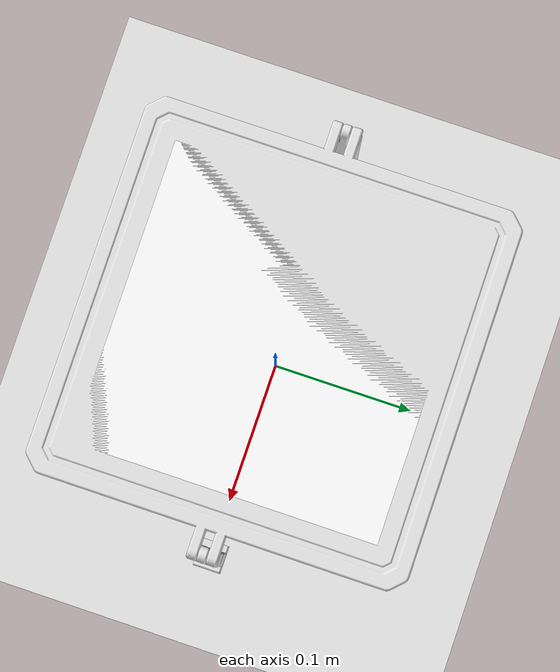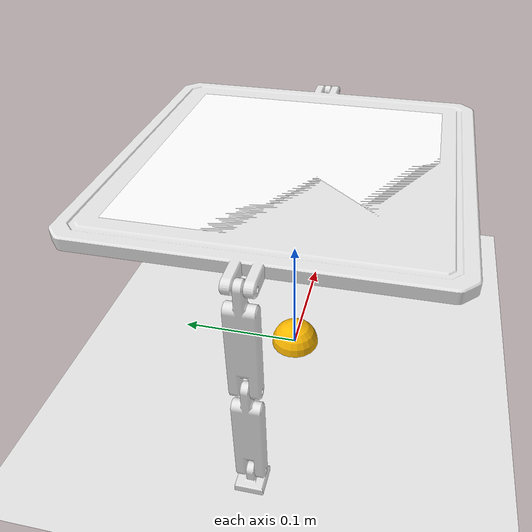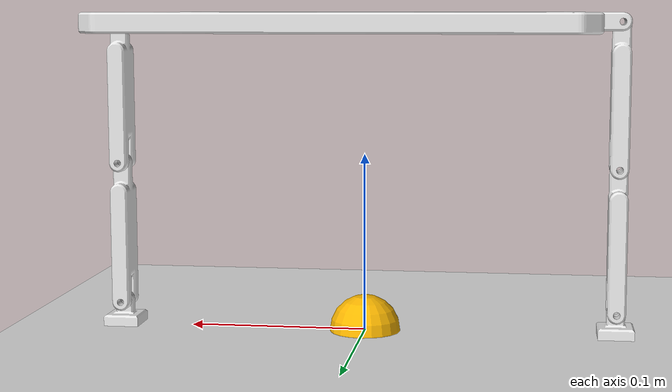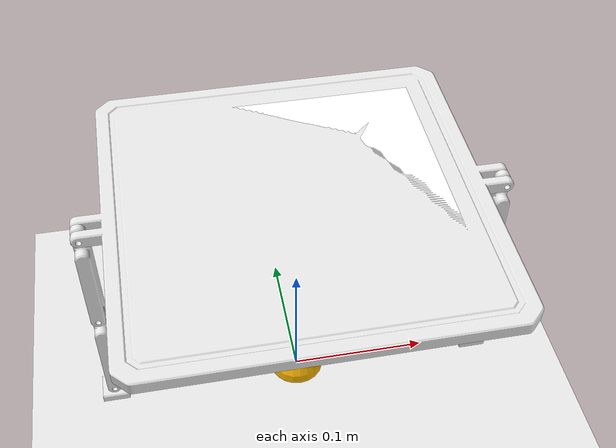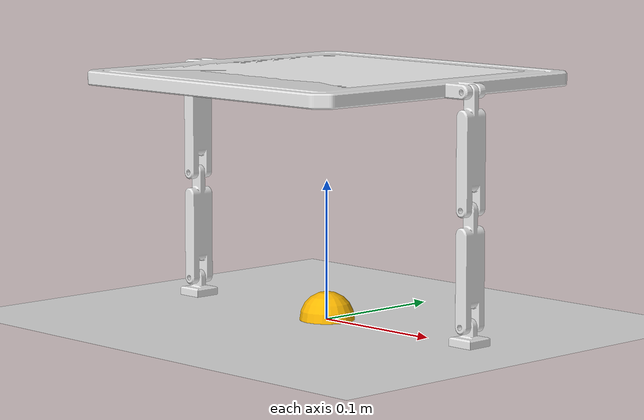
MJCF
<mujoco model="juggling_platform_2d">
  <option cone="elliptic" timestep="3e-3" integrator="implicitfast"/>
  <compiler angle="radian" coordinate="local" meshdir="/home/admin/workspace/src/descriptions/balancing_platform_2d_description/meshes"/>
  <option gravity="0 0 -9.81"/>

  <default>
    <joint damping="0.0"/>
    <pair solref="0.05 0.03" solimp="0.001 0.005 4 0.5 0.001"/>
    <geom type="mesh" contype="1" conaffinity="1" rgba="0.9 0.9 0.9 1"/>
  </default>

  <statistic center="0.0 0 0.2" extent="1.0"/>

  <visual>
    <headlight diffuse="0.6 0.6 0.6" ambient="0.3 0.3 0.3" specular="0 0 0"/>
    <rgba haze="0.15 0.25 0.35 1"/>
    <global azimuth="90" elevation="-20"/>
  </visual>

  <asset>
    <mesh name="motor" file="motor.stl" scale="0.001 0.001 0.001"/>
    <mesh name="arm" file="arm.stl" scale="0.001 0.001 0.001"/>
    <mesh name="platform" file="platform.stl" scale="0.001 0.001 0.001"/>

    <texture type="skybox" builtin="gradient" rgb1="0.3 0.5 0.7" rgb2="0 0 0" width="512" height="3072"/>
    <texture type="2d" name="groundplane" builtin="checker" mark="edge" rgb1="0.2 0.3 0.4" rgb2="0.1 0.2 0.3"
             markrgb="0.8 0.8 0.8" width="300" height="300"/>
    <material name="groundplane" texture="groundplane" texuniform="true" texrepeat="5 5" reflectance="0.2"/>
  </asset>

  <worldbody>
    <light pos="0 0 1.5" dir="0 0 -1" directional="true"/>
    <geom name="floor" size="0.5 0.5 0.05" type="plane" material="groundplane"/>
    <body name="left_motor" pos="-0.14 0 0">
      <geom mesh="motor"/>
      <inertial pos="0 0 0.004761" mass="23.468"
        diaginertia="1.031498 1.057814 1.273548"/>

      <body name="left_low_arm" pos="0 0 0.014">
        <joint name="left_motor_joint" type="hinge" axis="0 1 0"
               range="-1.5 0.0" limited="true"/>
        <geom mesh="arm" pos="0 0 0.04"/>
        <inertial pos="0 0 -0.003129" mass="0.107464"
          diaginertia="0.000052495 0.00004983497 0.000004385676"/>

        <body name="left_top_arm" pos="0 0 0.08">
          <joint name="left_arm_joint" type="hinge" axis="0 1 0"
                 range="0.75 2.5"/>
          <geom mesh="arm" pos="0 0 0.04"/>
          <inertial pos="0 0 -0.003129" mass="0.107464"
            diaginertia="0.000052495 0.00004983497 0.000004385676"/>

          <body name="platform" pos="0 0 0.08" euler="0 0 1.5708">
            <joint name="left_platform_joint" type="hinge" axis="1 0 0"
                   range="-1 0.2" damping="0.1"/>
            <geom mesh="platform" pos="0 -0.14 -0.005" contype="0" conaffinity="0"/>
            <geom name="platform_collision" type="box" size="0.1 0.1 0.005" pos="0 -0.14 0" rgba="1 1 1 1" friction="5.2 0.0 0.0"/>
            <inertial pos="0.0 0.0 0.004974" mass="0.4891"
              diaginertia="0.002571 0.002504 0.005067"/>

            <body name="right_top_arm" pos="0 -0.28 0" euler="0 0 1.5708">
              <joint name="right_platform_joint" type="hinge" axis="0 1 0"
                    range="-0.2 1" damping="0.1"/>
              <geom mesh="arm" pos="0 0 -0.04"/>
              <inertial pos="0 0 -0.003129" mass="0.4891"
                diaginertia="0.000052495 0.00004983497 0.000004385676"/>

              <body name="right_low_arm" pos="0 0 -0.08" euler="0 0 0">
                <joint name="right_arm_joint" type="hinge" axis="0 1 0"
                      range="-2.5 -0.75"/>
                <geom mesh="arm" pos="0 0 -0.04"/>
                <inertial pos="0 0 -0.003129" mass="0.4891"
                  diaginertia="0.000052495 0.00004983497 0.000004385676"/>

                <body name="right_motor" pos="0 0 -0.08" euler="0 0 3.141592654">
                  <joint name="right_motor_joint" type="hinge" axis="0 1 0"
                      range="-1.5 0.0" limited="true"/>
                  <geom mesh="motor" pos="0 0 -0.014"/>
                  <inertial pos="0 0 0.004761" mass="23.468"
                    diaginertia="1.031498 1.057814 1.273548"/>
                </body>
              </body>
            </body>
          </body>
        </body>
      </body>
    </body>

    <body name="ball" pos="0 0 0" euler="0 0 0">
      <joint name="ball_joint_x" type="slide" axis="1 0 0"/>
      <joint name="ball_joint_z" type="slide" axis="0 0 1"/>
      <inertial pos="0 0 0" mass="0.027" diaginertia="4.3e-6 4.3e-6 4.3e-6"/>
      <geom name="ball" type="sphere" size="0.02" rgba="1 0.729 0 1" friction="0.2 0.0 0.0"/>
    </body>
  </worldbody>

  <equality>
    <connect name="fix_left_motor"  active="true" body1="world" body2="left_motor"  anchor="-0.14 0 0" solref="0.02 1"/>
    <connect name="fix_right_motor" active="true" body1="world" body2="right_motor" anchor="0 0.14 0" solref="0.02 1"/>
  </equality>

  <contact>
    <exclude body1="left_motor" body2="ball"/>
    <exclude body1="right_motor" body2="ball"/>
    <exclude body1="left_low_arm" body2="ball"/>
    <exclude body1="left_top_arm" body2="ball"/>
    <exclude body1="right_low_arm" body2="ball"/>
    <exclude body1="right_top_arm" body2="ball"/>
    <exclude body1="platform" body2="left_motor"/>
    <exclude body1="platform" body2="right_motor"/>
    <exclude body1="platform" body2="left_low_arm"/>
    <exclude body1="platform" body2="left_top_arm"/>
    <exclude body1="platform" body2="right_low_arm"/>
    <exclude body1="platform" body2="right_top_arm"/>
    <exclude body1="left_low_arm" body2="left_top_arm"/>
    <exclude body1="left_low_arm" body2="left_motor"/>
    <exclude body1="right_low_arm" body2="right_top_arm"/>
    <exclude body1="right_low_arm" body2="right_motor"/>
    <pair geom1="platform_collision" geom2="ball"/>
    <pair geom1="floor" geom2="ball"/>
  </contact>

  <actuator>
    <position name="left_motor" joint="left_motor_joint" kp="10" kv="0.5" ctrlrange="-1.57 0.0"/>
    <position name="right_motor" joint="right_motor_joint" kp="10" kv="0.5" ctrlrange="-1.57 0.0"/>
  </actuator>

  <keyframe>
    <key name="home" qpos="-1.047197551 2.094395102 -1.047197551 1.047197551 -2.094395102 -1.047197551 0.0 0.3"
     ctrl="-1.047197551 -1.047197551"/>
  </keyframe>

</mujoco>
